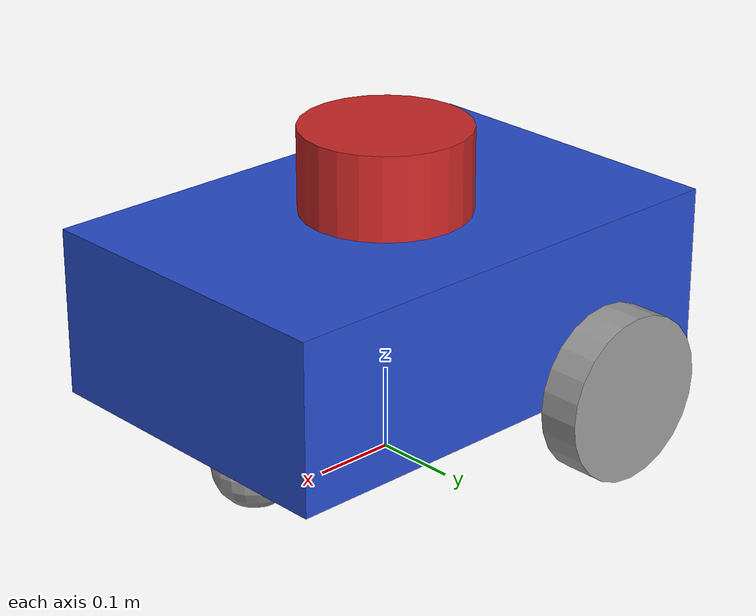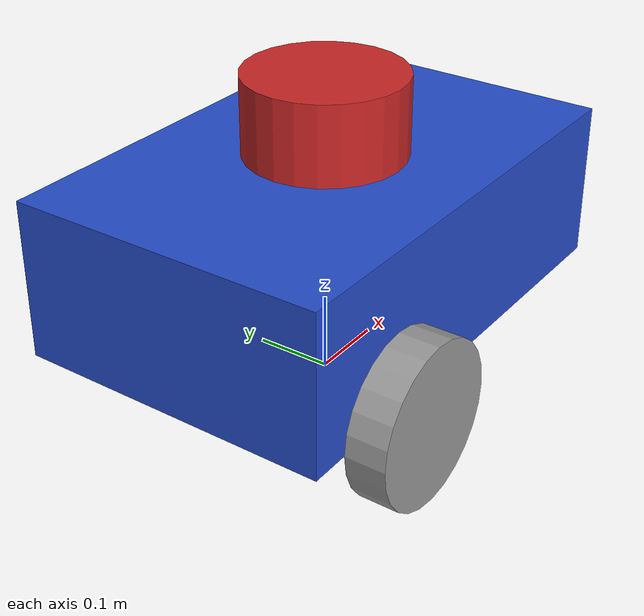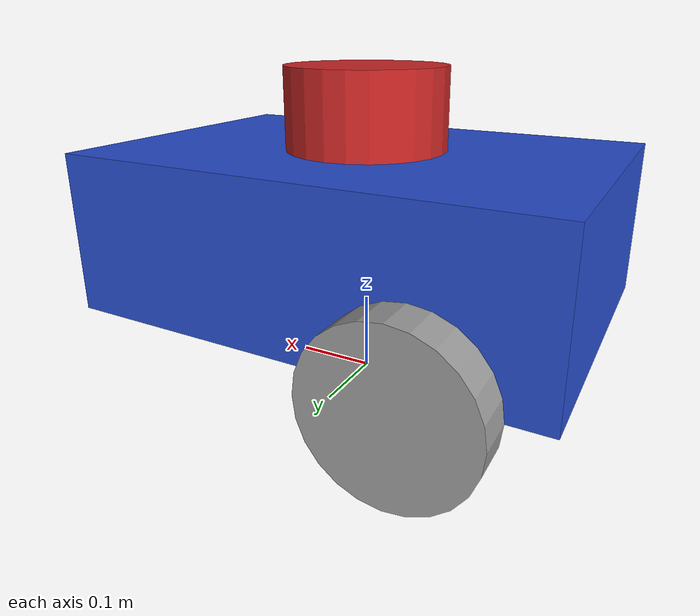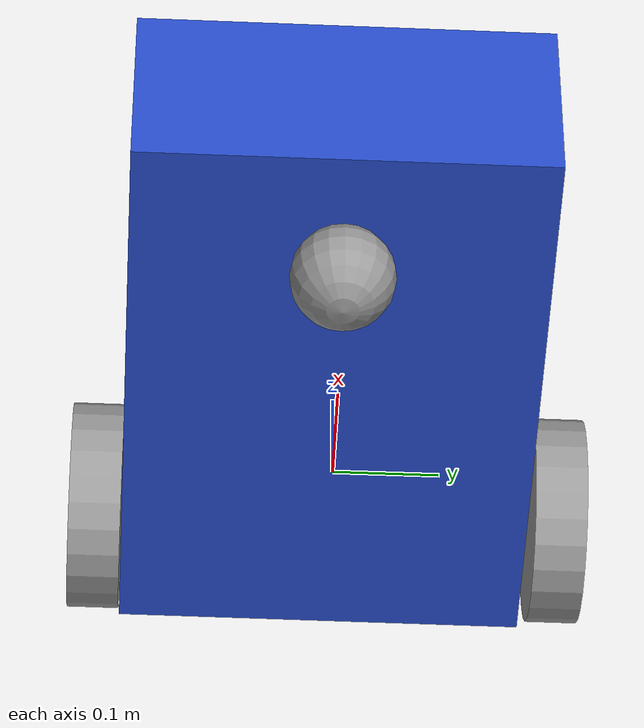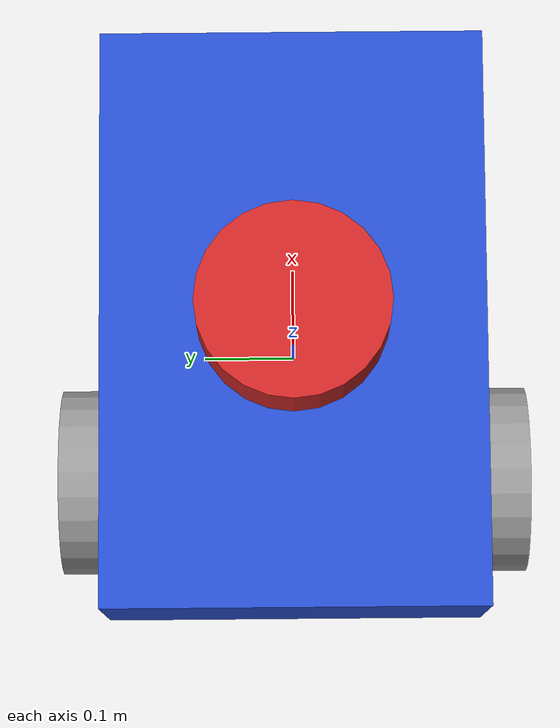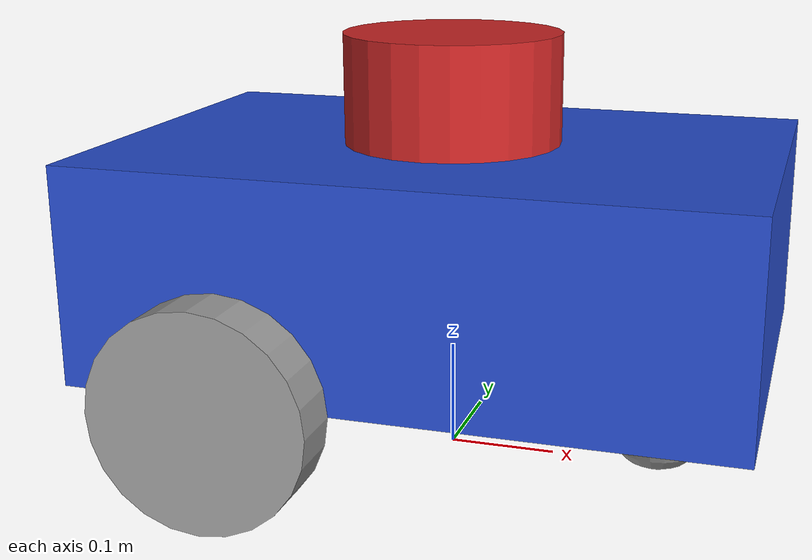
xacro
<?xml version="1.0"?>
<robot name="my_robot" xmlns:xacro="http://www.ros.org/wiki/xacro">

    <xacro:include filename="common_properties.xacro"/>
    <xacro:include filename="mobile_base.xacro"/>
    <xacro:include filename="mobile_base_gazebo.xacro" />
    <xacro:include filename="lidar.xacro"/>

</robot>

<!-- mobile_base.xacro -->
<robot xmlns:xacro="http://www.ros.org/wiki/xacro">
    <xacro:property name="base_length" value="0.6" />
    <xacro:property name="base_width" value="0.4"/>
    <xacro:property name="base_height" value="0.2" />
    <xacro:property name="wheel_radius" value="0.1"/>
    <xacro:property name="wheel_length" value="0.05"/>
    <xacro:property name="caster_wheel_radius" value="${wheel_radius/2}" />

    <link name="base_link">
        <visual>
            <geometry>
                <box size="${base_length} ${base_width} ${base_height}"/>
            </geometry>
            <origin xyz="0 0 ${base_height / 2}" rpy="0 0 0"/>
            <material name="blue"/>
        </visual>
        <collision>
            <geometry>
                <box size="${base_length} ${base_width} ${base_height}"/>
            </geometry>
            <origin xyz="0 0 ${base_height / 2}" rpy="0 0 0"/>
        </collision>
        <xacro:box_inertia m="5.0" x="${base_length}" y="${base_width}" z="${base_height}"
                           o_xyz="0 0 ${base_height / 2}" o_rpy="0.0 0.0 0.0"/>
    </link>

    <xacro:macro name="wheel_link" params="prefix">
        <link name="${prefix}_wheel_link">
            <visual>
                <geometry>
                    <cylinder radius="${wheel_radius}" length="${wheel_length}"/>
                </geometry>
                <origin xyz="0 0 0" rpy="${pi / 2} 0.0 0.0"/>
                <material name="grey"/>
            </visual>
            <collision>
                <geometry>
                    <sphere radius="${wheel_radius}"/>
                    <origin xyz="0 0 0" rpy="0.0 0.0 0.0"/>
                </geometry>
            </collision>
            <xacro:cylinder_inertia m="1.0" r="${wheel_radius}" l="${wheel_length}"
                                    o_xyz="0 0 0" o_rpy="${pi / 2} 0.0 0.0"/>
        </link>
    </xacro:macro>

    <xacro:wheel_link prefix="right"/>
    <xacro:wheel_link prefix="left"/>

    <link name="caster_wheel_link">
        <visual>
            <geometry>
                <sphere radius="${caster_wheel_radius}"/>
            </geometry>
            <origin xyz="0.0 0.0 0.0" rpy="0 0.0 0.0"/>
            <material name="grey"/>
        </visual>
        <collision>
            <geometry>
                <sphere radius="${caster_wheel_radius}"/>
            </geometry>
            <origin xyz="0.0 0.0 0.0" rpy="0 0.0 0.0"/>
        </collision>
        <xacro:sphere_inertia m="0.5" r="${caster_wheel_radius}"
                              o_xyz="0.0 0.0 0.0" o_rpy="0.0 0.0 0.0"/>
    </link>

    <link name="base_footprint"/>

    <joint name="base_joint" type="fixed">
        <parent link="base_footprint"/>
        <child link="base_link"/>
        <origin xyz="0.0 0.0 ${wheel_radius}" rpy="0.0 0.0 0.0"/>
    </joint>

    <joint name="base_right_wheel_joint" type="continuous">
        <parent link="base_link"/>
        <child link="right_wheel_link"/>
        <origin xyz="${-base_length / 4.0} ${-(base_width + wheel_length)/2} 0.0" rpy="0.0 0.0 0.0"/>
        <axis xyz="0.0 1.0 0.0"/>
    </joint>

    <joint name="base_left_wheel_joint" type="continuous">
        <parent link="base_link"/>
        <child link="left_wheel_link"/>
        <origin xyz="${-base_length / 4.0} ${(base_width + wheel_length)/2} 0.0" rpy="0.0 0.0 0.0"/>
        <axis xyz="0.0 1.0 0.0"/>
    </joint>

    <joint name="base_caster_wheel_joint" type="fixed">
        <parent link="base_link"/>
        <child link="caster_wheel_link"/>
        <origin xyz="${base_length / 3.0} 0.0 ${-caster_wheel_radius}" rpy="0.0 0.0 0.0"/>
    </joint>

</robot>

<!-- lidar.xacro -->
<robot name="my_robot" xmlns:xacro="http://www.ros.org/wiki/xacro">

    <xacro:property name="lidar_radius" value="0.1"/>
    <xacro:property name="lidar_length" value="0.1"/>

    <link name="lidar_link">
        <visual>
            <geometry>
                <cylinder radius="${lidar_radius}" length="${lidar_length}"/>
            </geometry>
            <origin xyz="0 0 0" rpy="0.0 0.0 0.0"/>
            <material name="red"/>
        </visual>
        <collision>
            <geometry>
                    <cylinder radius="${lidar_radius}" length="${lidar_length}"/>
            </geometry>
        </collision>
        <xacro:cylinder_inertia m="0.1" r="${lidar_radius}" l="${lidar_length}"
                                o_xyz="0 0 0" o_rpy="0 0 0"/>
    </link>
    <joint name="laser_joint" type="fixed">
        <parent link="base_link"/>
        <child link="lidar_link"/>
        <origin xyz="0.0 0.0 ${base_height + (lidar_length/2)}" rpy="0.0 0.0 0.0"/>
    </joint>

</robot>
